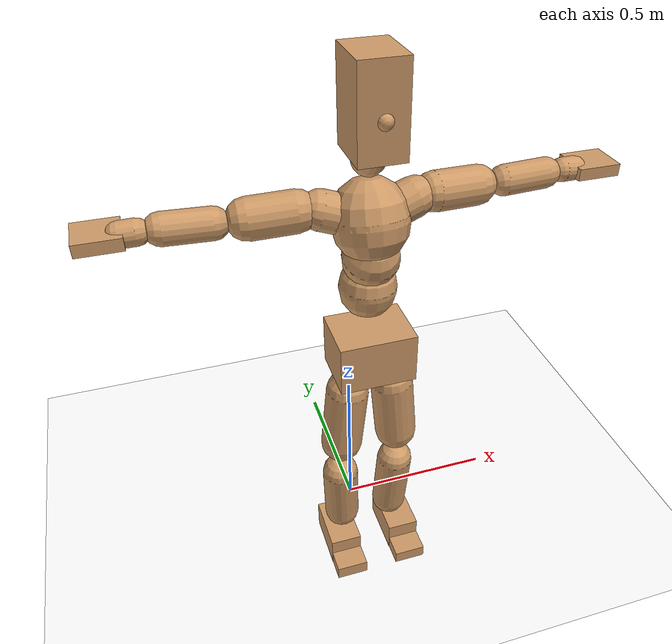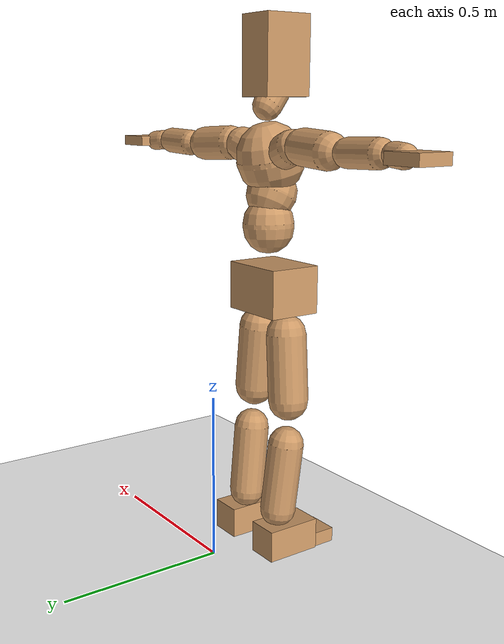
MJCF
<mujoco model="humanoid">
  <option integrator="implicitfast" />

  <visual>
    <global offwidth="1280" offheight="960" />
    <headlight active="1" ambient="0.34 0.34 0.34" diffuse="0.5 0.5 0.5" />
  </visual>

  <default>
    <joint damping="2" stiffness="2" armature="0.01" limited="true" solimplimit="0 .99 .01" />
    <geom condim="1" friction="0.7 0.005 0.0001" solimp=".99 .99 .003" solref="0.015 1" margin="0.001" rgba="0.8 0.6 .4 1" />
    <default class="smplcontact">
      <geom condim="3" friction="1. 0.005 0.0001" solref="0.015 1" solimp="0.98 0.98 0.001" priority="1" />
    </default>
    <default class="stiff_medium">
      <joint stiffness="10" />
    </default>
    <default class="stiff_medium_higher">
      <joint stiffness="50" />
    </default>
    <default class="stiff_high">
      <joint stiffness="100" />
    </default>
  </default>

  <asset>
    <texture type="skybox" builtin="gradient" rgb1="0.99 0.99 0.99" rgb2="0.608 0.828 0.892" width="100" />
    <texture builtin="flat" height="1278" mark="cross" markrgb="1 1 1" name="texgeom" random="0.01" rgb1="0.8 0.6 0.4" rgb2="0.8 0.6 0.4" type="cube" width="127" />
    <texture name="texplane" type="2d" builtin="checker" markrgb="1 1 1" rgb1="0.756 0.772 0.76" rgb2="0.6 0.6 0.6" width="100" height="100" />
    <material name="MatPlane" reflectance="0.5" texture="texplane" texrepeat="1 1" texuniform="true" />
    <material name="geom" texture="texgeom" texuniform="true" />
  </asset>

  <worldbody>
    <light name="tracking_light" pos="0 0 7" dir="0 0 -1" directional="true" cutoff="100" exponent="1" diffuse="1 1 1" specular="0.1 0.1 0.1" mode="trackcom" />
    <camera name="back" pos="0 3 2.4" xyaxes="-1 0 0 0 -1 2" mode="trackcom" />
    <camera name="side" pos="-3 0 2.4" xyaxes="0 -1 0 1 0 2" mode="trackcom" />
    <camera name="front_side" pos="-2.8 -2.8 0.8" xyaxes="0.5 -0.5 0 0.1 0.1 1" mode="trackcom" />
    <geom condim="3" name="floor" pos="0 0 0" rgba="1 1 1 1" size="100 100 .2" type="plane" material="MatPlane" />
    <body name="Pelvis" pos="-0.0018 -0.2233 0.825587" euler="90 0 0">
      <site name="Pelvis" size="0.01" />
      <freejoint name="Pelvis" />
      <geom type="box" pos="-0.0000 -0.0121 -0.0055" size="0.1069 0.0722 0.083" quat="1.0000 0.0000 0.0000 0.0000" density="3165.830099" name="Pelvis" />
      <body name="L_Hip" pos="0.0608125 -0.079975 -0.00595">
        <joint name="L_Hip_x" type="hinge" pos="0 0 0" axis="1 0 0" stiffness="8.018564387755102" range="-160.0 22.92" class="stiff_medium" damping="11.360360262787495" armature="0.007153277434128081"/>
        <joint name="L_Hip_y" type="hinge" pos="0 0 0" axis="0 1 0" stiffness="8.040343265306122" range="-70.0 70.0" class="stiff_medium" damping="8.207855033549663" armature="0.008378856726485993"/>
        <joint name="L_Hip_z" type="hinge" pos="0 0 0" axis="0 0 1" stiffness="8.038478673469386" range="-28.65 90.0" class="stiff_medium" damping="7.581991637464592" armature="0.007151427468522713"/>
        <geom type="capsule" density="2040.816327" fromto="0.0060375 -0.065625 -0.0007875 0.023975 -0.262675 -0.00315" size="0.0615" name="L_Hip" />
        <body name="L_Knee" pos="0.0300125 -0.3283 -0.0039375">
          <joint name="L_Knee_x" type="hinge" pos="0 0 0" axis="1 0 0" range="-5.16 171.89" damping="6.187481263356621" armature="0.007345812746914751" stiffness="1.6286882448979592"/>
          <joint name="L_Knee_y" type="hinge" pos="0 0 0" axis="0 1 0" range="-4.58 6.88" damping="6.664577128501179" armature="0.008600571968275746" stiffness="1.6138675306122447"/>
          <joint name="L_Knee_z" type="hinge" pos="0 0 0" axis="0 0 1" range="-6.88 4.58" damping="6.195974658750657" armature="0.007336542514311975" stiffness="1.635226244897959"/>
          <geom type="capsule" density="1234.567901" fromto="-0.0023625 -0.06965 -0.0076125 -0.0095375 -0.2786 -0.030625" size="0.0541" name="L_Knee" />
          <body name="L_Ankle" pos="-0.0119 -0.34825 -0.0382375">
            <joint name="L_Ankle_x" type="hinge" pos="0 0 0" axis="1 0 0" range="-45.84 45.84" class="stiff_medium" damping="5.16180813989307" armature="0.0084584782258343" stiffness="8.750018673469388"/>
            <joint name="L_Ankle_y" type="hinge" pos="0 0 0" axis="0 1 0" range="-74.48 22.92" class="stiff_medium" damping="2.5896377165389355" armature="0.008515827848834853" stiffness="8.750011836734695"/>
            <joint name="L_Ankle_z" type="hinge" pos="0 0 0" axis="0 0 1" range="-4.58 4.58" class="stiff_medium" damping="5.292201995620599" armature="0.008891238718238301" stiffness="8.75"/>
            <geom type="box" pos="0.0203875 -0.0209125 0.021175" size="0.0483 0.0464 0.085" quat="1.0000 0.0000 0.0000 0.0000" density="449.071558" name="L_Ankle" class="smplcontact" />
            <body name="L_Toe" pos="0.0231 -0.048825 0.104388">
              <joint name="L_Toe_x" type="hinge" pos="0 0 0" axis="1 0 0" range="-91.67 22.92" armature="0.009108934582590985" damping="1.7855327227208255" stiffness="1.75"/>
              <joint name="L_Toe_y" type="hinge" pos="0 0 0" axis="0 1 0" range="-4.58 4.58" armature="0.009372172477213336" damping="1.811148908020726" stiffness="1.75"/>
              <joint name="L_Toe_z" type="hinge" pos="0 0 0" axis="0 0 1" range="-4.58 4.58" armature="0.009904425331424308" damping="1.8618670376797877" stiffness="1.75"/>
              <geom type="box" pos="-0.002625 0.0048125 0.0217" size="0.0478 0.02 0.0496" quat="1.0000 0.0000 0.0000 0.0000" density="423.206892" name="L_Toe" class="smplcontact" />
            </body>
          </body>
        </body>
      </body>
      <body name="R_Hip" pos="-0.0592375 -0.0791875 -0.0037625">
        <joint name="R_Hip_x" type="hinge" pos="0 0 0" axis="1 0 0" stiffness="8.018564387755102" range="-160.0 22.92" class="stiff_medium" damping="11.360360262787495" armature="0.007153277434128081"/>
        <joint name="R_Hip_y" type="hinge" pos="0 0 0" axis="0 1 0" stiffness="8.040343265306122" range="-70.0 70.0" class="stiff_medium" damping="8.207855033549663" armature="0.008378856726485993"/>
        <joint name="R_Hip_z" type="hinge" pos="0 0 0" axis="0 0 1" stiffness="8.038478673469386" range="-90.0 28.65" class="stiff_medium" damping="7.581991637464592" armature="0.007151427468522713"/>
        <geom type="capsule" density="2040.816327" fromto="-0.0067375 -0.0669375 -0.001575 -0.026775 -0.267838 -0.0062125" size="0.0606" name="R_Hip" />
        <body name="R_Knee" pos="-0.0335125 -0.334775 -0.0077875">
          <joint name="R_Knee_x" type="hinge" pos="0 0 0" axis="1 0 0" range="-5.16 171.89" damping="6.187481263356621" armature="0.007345812746914751" stiffness="1.6286882448979592"/>
          <joint name="R_Knee_y" type="hinge" pos="0 0 0" axis="0 1 0" range="-6.88 4.58" damping="6.664577128501179" armature="0.008600571968275746" stiffness="1.6138675306122447"/>
          <joint name="R_Knee_z" type="hinge" pos="0 0 0" axis="0 0 1" range="-4.58 6.88" damping="6.195974658750657" armature="0.007336542514311975" stiffness="1.635226244897959"/>
          <geom type="capsule" density="1234.567901" fromto="0.0028 -0.0697375 -0.0074375 0.011025 -0.278863 -0.029575" size="0.0541" name="R_Knee" />
          <body name="R_Ankle" pos="0.013825 -0.3486 -0.0370125">
            <joint name="R_Ankle_x" type="hinge" pos="0 0 0" axis="1 0 0" range="-45.84 45.84" class="stiff_medium" damping="5.16180813989307" armature="0.0084584782258343" stiffness="8.750018673469388"/>
            <joint name="R_Ankle_y" type="hinge" pos="0 0 0" axis="0 1 0" range="-22.92 74.48" class="stiff_medium" damping="2.5896377165389355" armature="0.008515827848834853" stiffness="8.750011836734695"/>
            <joint name="R_Ankle_z" type="hinge" pos="0 0 0" axis="0 0 1" range="-4.58 4.58" class="stiff_medium" damping="5.292201995620599" armature="0.008891238718238301" stiffness="8.75"/>
            <geom type="box" pos="-0.01855 -0.015225 0.0224" size="0.0483 0.0478 0.0865" quat="1.0000 0.0000 0.0000 0.0000" density="434.700981" name="R_Ankle" class="smplcontact" />
            <body name="R_Toe" pos="-0.022225 -0.0420875 0.107888">
              <joint name="R_Toe_x" type="hinge" pos="0 0 0" axis="1 0 0" range="-91.67 22.92" armature="0.009108934582590985" damping="1.7855327227208255" stiffness="1.75"/>
              <joint name="R_Toe_y" type="hinge" pos="0 0 0" axis="0 1 0" range="-4.58 4.58" armature="0.009372172477213336" damping="1.811148908020726" stiffness="1.75"/>
              <joint name="R_Toe_z" type="hinge" pos="0 0 0" axis="0 0 1" range="-4.58 4.58" armature="0.009904425331424308" damping="1.8618670376797877" stiffness="1.75"/>
              <geom type="box" pos="0.003675 0.0039375 0.0198625" size="0.0479 0.0216 0.0493" quat="1.0000 0.0000 0.0000 0.0000" density="407.384095" name="R_Toe" class="smplcontact" />
            </body>
          </body>
        </body>
      </body>
      <body name="Torso" pos="-0.0025 0.109 -0.0267">
        <joint name="Torso_x" type="hinge" pos="0 0 0" axis="1 0 0" range="-25.78 57.3" class="stiff_medium" damping="13.810652204593467" armature="0.00909250101895922" stiffness="9.323146326530612"/>
        <joint name="Torso_y" type="hinge" pos="0 0 0" axis="0 1 0" range="-57.3 57.3" class="stiff_high" damping="14.331171543099826" armature="0.005453647751768046" stiffness="94.1491306122449"/>
        <joint name="Torso_z" type="hinge" pos="0 0 0" axis="0 0 1" range="-34.38 34.38" class="stiff_high" damping="17.298336416757877" armature="0.00784644435837221" stiffness="95.34014042553191"/>
        <geom type="capsule" density="2040.816327" fromto="0.0025 0.0608 0.0005 0.003 0.0743 0.0006" size="0.0769" name="Torso" />
        <body name="Spine" pos="0.0055 0.1352 0.0011">
          <joint name="Spine_x" type="hinge" pos="0 0 0" axis="1 0 0" stiffness="9.198122653061224" range="-25.78 57.3" class="stiff_medium" damping="13.62544793240939" armature="0.00897056634326775"/>
          <joint name="Spine_y" type="hinge" pos="0 0 0" axis="0 1 0" stiffness="9.181372040816328" range="-57.3 57.3" class="stiff_high" damping="5.644321396937274" armature="0.005421705337566874"/>
          <joint name="Spine_z" type="hinge" pos="0 0 0" axis="0 0 1" stiffness="18.1392375" range="-34.38 34.38" class="stiff_high" damping="9.55999432042161" armature="0.006997835754189828"/>
          <geom type="capsule" density="2040.816327" fromto="0.0007 0.0238 0.0114 0.0008 0.0291 0.014" size="0.0755" name="Spine" />
          <body name="Chest" pos="0.0015 0.0529 0.0254">
            <joint name="Chest_x" type="hinge" pos="0 0 0" axis="1 0 0" stiffness="8.90027425531915" range="-25.78 57.3" class="stiff_medium" damping="13.356132991200658" armature="0.008907904701027888"/>
            <joint name="Chest_y" type="hinge" pos="0 0 0" axis="0 1 0" stiffness="8.011889047619047" range="-57.3 57.3" class="stiff_high" damping="5.2662250647625015" armature="0.005408588385784326"/>
            <joint name="Chest_z" type="hinge" pos="0 0 0" axis="0 0 1" stiffness="18.1318547826087" range="-34.38 34.38" class="stiff_high" damping="9.30245805793391" armature="0.0066285832124010555"/>
            <geom type="capsule" density="2040.816327" fromto="-0.0009 0.0682 -0.0173 -0.001 0.0833 -0.0212" size="0.1002" name="Chest" />
            <body name="Neck" pos="-0.0028 0.2139 -0.0429">
              <joint name="Neck_x" type="hinge" pos="0 0 0" axis="1 0 0" range="-28.65 57.3" class="stiff_medium_higher" damping="9.999999999999993" armature="0.009999999999999988" stiffness="50.0"/>
              <joint name="Neck_y" type="hinge" pos="0 0 0" axis="0 1 0" range="-40.11 40.11" class="stiff_medium_higher" damping="10.0" armature="0.01" stiffness="50.0"/>
              <joint name="Neck_z" type="hinge" pos="0 0 0" axis="0 0 1" range="-40.11 40.11" class="stiff_medium_higher" damping="9.999999999999998" armature="0.009999999999999995" stiffness="50.0"/>
              <geom type="capsule" density="1000" fromto="0.001 0.013 0.0103 0.0041 0.052 0.0411" size="0.0436" name="Neck" />
              <body name="Head" pos="0.0052 0.065 0.0513">
                <joint name="Head_x" type="hinge" pos="0 0 0" axis="1 0 0" range="-28.65 57.3" class="stiff_medium_higher" damping="1.9999999999999967" armature="0.009999999999999967" stiffness="50.0"/>
                <joint name="Head_y" type="hinge" pos="0 0 0" axis="0 1 0" range="-40.11 40.11" class="stiff_medium_higher" damping="2.0" armature="0.010000000000000002" stiffness="50.0"/>
                <joint name="Head_z" type="hinge" pos="0 0 0" axis="0 0 1" range="-40.11 40.11" class="stiff_medium_higher" damping="1.9999999999999982" armature="0.009999999999999983" stiffness="50.0"/>
                <geom type="box" pos="-0.0042 0.0876 -0.0116" size="0.0606 0.1154 0.076" quat="1.0000 0.0000 0.0000 0.0000" density="1018.069894" name="Head" />
                <geom type="capsule" name="nose" size="0.02 0.01" pos="0 0.07 0.05" quat="1 0 0 0" mass="0" contype="0" conaffinity="0" />
              </body>
            </body>
            <body name="L_Thorax" pos="0.06107 0.0943175 -0.0264275">
              <joint name="L_Thorax_x" type="hinge" pos="0 0 0" axis="1 0 0" range="-10.89 4.58" class="stiff_medium_higher" damping="13.430877912506707" armature="0.006743873105350367" stiffness="33.43562346938776"/>
              <joint name="L_Thorax_y" type="hinge" pos="0 0 0" axis="0 1 0" range="-28.65 17.19" class="stiff_medium_higher" damping="11.84395870975866" armature="0.0052794554835980945" stiffness="33.21350051020408"/>
              <joint name="L_Thorax_z" type="hinge" pos="0 0 0" axis="0 0 1" range="-31.51 40.11" class="stiff_medium_higher" damping="11.842904847336026" armature="0.005278125365950999" stiffness="33.215958673469395"/>
              <geom type="capsule" density="1000" fromto="0.014105 0.0047275 -0.001395 0.05642 0.01891 -0.0055025" size="0.0521" name="L_Thorax" />
              <body name="L_Shoulder" pos="0.070525 0.0236375 -0.0068975">
                <joint name="L_Shoulder_x" type="hinge" pos="0 0 0" axis="1 0 0" range="-97.4 97.4" class="stiff_medium" damping="4.200573869623509" armature="0.007293874713182494" stiffness="6.719801632653062"/>
                <joint name="L_Shoulder_y" type="hinge" pos="0 0 0" axis="0 1 0" range="-108.86 80.21" class="stiff_medium" damping="3.571992469559294" armature="0.0053222464306009526" stiffness="6.659223469387755"/>
                <joint name="L_Shoulder_z" type="hinge" pos="0 0 0" axis="0 0 1" range="-97.4 85.94" class="stiff_medium" damping="3.572341469527375" armature="0.005320431449506391" stiffness="6.662796938775511"/>
                <geom type="capsule" density="1000" fromto="0.0402225 -0.002015 -0.0042625 0.160968 -0.007905 -0.01705" size="0.0517" name="L_Shoulder" />
                <body name="L_Elbow" pos="0.20119 -0.00992 -0.0213125">
                  <joint name="L_Elbow_x" type="hinge" pos="0 0 0" axis="1 0 0" range="-17.19 4.58" damping="3.751209439001524" armature="0.008221713445805232" stiffness="1.3692106734693876"/>
                  <joint name="L_Elbow_y" type="hinge" pos="0 0 0" axis="0 1 0" range="-180.0 17.19" damping="3.0766314110203528" armature="0.005532912421377135" stiffness="1.368633387755102"/>
                  <joint name="L_Elbow_z" type="hinge" pos="0 0 0" axis="0 0 1" range="-100.84 4.58" damping="3.0750834512185703" armature="0.005523383254833452" stiffness="1.3696153673469391"/>
                  <geom type="capsule" density="1000" fromto="0.038595 0.001395 -0.000155 0.154535 0.00558 -0.0006975" size="0.0405" name="L_Elbow" />
                  <body name="L_Wrist" pos="0.19313 0.006975 -0.00093">
                    <joint name="L_Wrist_x" type="hinge" pos="0 0 0" axis="1 0 0" range="-180.0 22.92" armature="0.008602907880090728" damping="1.5994571311849581" stiffness="1.486859530612245"/>
                    <joint name="L_Wrist_y" type="hinge" pos="0 0 0" axis="0 1 0" range="-17.19 17.19" armature="0.00633543766201438" damping="1.3682982903238887" stiffness="1.4775934285714285"/>
                    <joint name="L_Wrist_z" type="hinge" pos="0 0 0" axis="0 0 1" range="-22.92 22.92" armature="0.0062061994301847246" damping="1.3559819581986114" stiffness="1.4813309591836734"/>
                    <geom type="capsule" density="1000" fromto="0.01302 -0.00124 -0.002325 0.05208 -0.0050375 -0.0093" size="0.0318" name="L_Wrist" class="smplcontact" />
                    <body name="L_Hand" pos="0.0651 -0.006355 -0.0115475">
                      <joint name="L_Hand_x" type="hinge" pos="0 0 0" axis="1 0 0" range="-17.19 17.19" armature="0.009826007646420857" damping="1.745297215488086" stiffness="1.55"/>
                      <joint name="L_Hand_y" type="hinge" pos="0 0 0" axis="0 1 0" range="-51.57 51.57" armature="0.007895802531703657" damping="1.5645123153328433" stiffness="1.55"/>
                      <joint name="L_Hand_z" type="hinge" pos="0 0 0" axis="0 0 1" range="-91.67 91.67" armature="0.00738127998582647" damping="1.5126786822078924" stiffness="1.55"/>
                      <geom type="box" pos="0.0382075 0.000775 -0.004495" size="0.0585 0.0158 0.0538" quat="1.0000 0.0000 0.0000 0.0000" density="400.552564" name="L_Hand" class="smplcontact" />
                    </body>
                  </body>
                </body>
              </body>
            </body>
            <body name="R_Thorax" pos="-0.063395 0.09207 -0.029915">
              <joint name="R_Thorax_x" type="hinge" pos="0 0 0" axis="1 0 0" range="-10.89 4.58" class="stiff_medium_higher" damping="13.430877912506707" armature="0.006743873105350367" stiffness="33.43562346938776"/>
              <joint name="R_Thorax_y" type="hinge" pos="0 0 0" axis="0 1 0" range="-17.19 28.65" class="stiff_medium_higher" damping="11.84395870975866" armature="0.0052794554835980945" stiffness="33.21350051020408"/>
              <joint name="R_Thorax_z" type="hinge" pos="0 0 0" axis="0 0 1" range="-40.11 31.51" class="stiff_medium_higher" damping="11.842904847336026" armature="0.005278125365950999" stiffness="33.215958673469395"/>
              <geom type="capsule" density="1000" fromto="-0.01488 0.0050375 -0.001395 -0.05952 0.02015 -0.0056575" size="0.0511" name="R_Thorax" />
              <body name="R_Shoulder" pos="-0.0744 0.025265 -0.0070525">
                <joint name="R_Shoulder_x" type="hinge" pos="0 0 0" axis="1 0 0" range="-97.4 97.4" class="stiff_medium" damping="4.200573869623509" armature="0.007293874713182494" stiffness="6.719801632653062"/>
                <joint name="R_Shoulder_y" type="hinge" pos="0 0 0" axis="0 1 0" range="-80.21 108.86" class="stiff_medium" damping="3.571992469559294" armature="0.0053222464306009526" stiffness="6.659223469387755"/>
                <joint name="R_Shoulder_z" type="hinge" pos="0 0 0" axis="0 0 1" range="-85.94 97.4" class="stiff_medium" damping="3.572341469527375" armature="0.005320431449506391" stiffness="6.662796938775511"/>
                <geom type="capsule" density="1000" fromto="-0.0392925 -0.0020925 -0.0033325 -0.157325 -0.0082925 -0.0132525" size="0.0531" name="R_Shoulder" />
                <body name="R_Elbow" pos="-0.196618 -0.0103075 -0.016585">
                  <joint name="R_Elbow_x" type="hinge" pos="0 0 0" axis="1 0 0" range="-17.19 4.58" damping="3.751209439001524" armature="0.008221713445805232" stiffness="1.3692106734693876"/>
                  <joint name="R_Elbow_y" type="hinge" pos="0 0 0" axis="0 1 0" range="-17.19 180.0" damping="3.0766314110203528" armature="0.005532912421377135" stiffness="1.368633387755102"/>
                  <joint name="R_Elbow_z" type="hinge" pos="0 0 0" axis="0 0 1" range="-4.58 100.84" damping="3.0750834512185703" armature="0.005523383254833452" stiffness="1.3696153673469391"/>
                  <geom type="capsule" density="1000" fromto="-0.0396025 0.00124 -0.0008525 -0.158255 0.004805 -0.00341" size="0.0408" name="R_Elbow" />
                  <body name="R_Wrist" pos="-0.197858 0.006045 -0.00434">
                    <joint name="R_Wrist_x" type="hinge" pos="0 0 0" axis="1 0 0" range="-180.0 22.92" armature="0.008602907880090728" damping="1.5994571311849581" stiffness="1.486859530612245"/>
                    <joint name="R_Wrist_y" type="hinge" pos="0 0 0" axis="0 1 0" range="-17.19 17.19" armature="0.00633543766201438" damping="1.3682982903238887" stiffness="1.4775934285714285"/>
                    <joint name="R_Wrist_z" type="hinge" pos="0 0 0" axis="0 0 1" range="-22.92 22.92" armature="0.0062061994301847246" damping="1.3559819581986114" stiffness="1.4813309591836734"/>
                    <geom type="capsule" density="1000" fromto="-0.0130975 -0.00093 -0.0016275 -0.0524675 -0.0037975 -0.0064325" size="0.0326" name="R_Wrist" class="smplcontact" />
                    <body name="R_Hand" pos="-0.065565 -0.0047275 -0.0079825">
                      <joint name="R_Hand_x" type="hinge" pos="0 0 0" axis="1 0 0" range="-17.19 17.19" armature="0.009826007646420857" damping="1.745297215488086" stiffness="1.55"/>
                      <joint name="R_Hand_y" type="hinge" pos="0 0 0" axis="0 1 0" range="-51.57 51.57" armature="0.007895802531703657" damping="1.5645123153328433" stiffness="1.55"/>
                      <joint name="R_Hand_z" type="hinge" pos="0 0 0" axis="0 0 1" range="-91.67 91.67" armature="0.00738127998582647" damping="1.5126786822078924" stiffness="1.55"/>
                      <geom type="box" pos="-0.035805 -0.0006975 -0.0061225" size="0.0569 0.0164 0.0546" quat="1.0000 0.0000 0.0000 0.0000" density="403.679611" name="R_Hand" class="smplcontact" />
                    </body>
                  </body>
                </body>
              </body>
            </body>
          </body>
        </body>
      </body>
    </body>
  </worldbody>
  <actuator>
    <general name="L_Hip_x" joint="L_Hip_x" biastype="affine" gainprm="230.3974619502181" biasprm="-172.65954561631258 -144.33415897959185 -1.5147147017049993" ctrllimited="true" ctrlrange="-1 1" forcerange="-288.6683179591837 288.6683179591837" />
    <general name="L_Hip_y" joint="L_Hip_y" biastype="affine" gainprm="176.8163833423812" biasprm="0.0 -144.7261787755102 -1.6415710067099327" ctrllimited="true" ctrlrange="-1 1" forcerange="-289.4523575510204 289.4523575510204" />
    <general name="L_Hip_z" joint="L_Hip_z" biastype="affine" gainprm="149.81713355526176" biasprm="77.4654963642251 -144.69261612244895 -1.5163983274929183" ctrllimited="true" ctrlrange="-1 1" forcerange="-289.3852322448979 289.3852322448979" />
    <general name="L_Knee_x" joint="L_Knee_x" biastype="affine" gainprm="226.4768283011216" biasprm="213.27580673621011 -146.58194204081633 -1.5468703158391552" ctrllimited="true" ctrlrange="-1 1" forcerange="-293.16388408163266 293.16388408163266" />
    <general name="L_Knee_y" joint="L_Knee_y" biastype="affine" gainprm="14.525877693080384" biasprm="2.915315767372154 -145.24807775510203 -1.6661442821252948" ctrllimited="true" ctrlrange="-1 1" forcerange="-290.49615551020406 290.49615551020406" />
    <general name="L_Knee_z" joint="L_Knee_z" biastype="affine" gainprm="14.718120281465588" biasprm="-2.953898485808975 -147.17036204081631 -1.5489936646876643" ctrllimited="true" ctrlrange="-1 1" forcerange="-294.34072408163263 294.34072408163263" />
    <general name="L_Ankle_x" joint="L_Ankle_x" biastype="affine" gainprm="63.0047751266266" biasprm="0.0 -78.75016806122449 -1.7206027132976902" ctrllimited="true" ctrlrange="-1 1" forcerange="-157.50033612244897 157.50033612244897" />
    <general name="L_Ankle_y" joint="L_Ankle_y" biastype="affine" gainprm="66.93564902394152" biasprm="-35.43328607468609 -78.75010653061226 -1.7264251443592904" ctrllimited="true" ctrlrange="-1 1" forcerange="-157.5002130612245 157.5002130612245" />
    <general name="L_Ankle_z" joint="L_Ankle_z" biastype="affine" gainprm="6.294966279630548" biasprm="0.0 -78.75 -1.764067331873533" ctrllimited="true" ctrlrange="-1 1" forcerange="-157.5 157.5" />
    <general name="L_Toe_x" joint="L_Toe_x" biastype="affine" gainprm="62.999142880599514" biasprm="-37.797286613502195 -63.0 -0.7142130890883303" ctrllimited="true" ctrlrange="-1 1" forcerange="-126.0 126.0" />
    <general name="L_Toe_y" joint="L_Toe_y" biastype="affine" gainprm="5.035973023704439" biasprm="0.0 -63.0 -0.7244595632082904" ctrllimited="true" ctrlrange="-1 1" forcerange="-126.0 126.0" />
    <general name="L_Toe_z" joint="L_Toe_z" biastype="affine" gainprm="5.035973023704439" biasprm="0.0 -63.0 -0.7447468150719151" ctrllimited="true" ctrlrange="-1 1" forcerange="-126.0 126.0" />
    <general name="R_Hip_x" joint="R_Hip_x" biastype="affine" gainprm="230.3974619502181" biasprm="-172.65954561631258 -144.33415897959185 -1.5147147017049993" ctrllimited="true" ctrlrange="-1 1" forcerange="-288.6683179591837 288.6683179591837" />
    <general name="R_Hip_y" joint="R_Hip_y" biastype="affine" gainprm="176.8163833423812" biasprm="0.0 -144.7261787755102 -1.6415710067099327" ctrllimited="true" ctrlrange="-1 1" forcerange="-289.4523575510204 289.4523575510204" />
    <general name="R_Hip_z" joint="R_Hip_z" biastype="affine" gainprm="149.81713355526176" biasprm="-77.4654963642251 -144.69261612244895 -1.5163983274929183" ctrllimited="true" ctrlrange="-1 1" forcerange="-289.3852322448979 289.3852322448979" />
    <general name="R_Knee_x" joint="R_Knee_x" biastype="affine" gainprm="226.4768283011216" biasprm="213.27580673621011 -146.58194204081633 -1.5468703158391552" ctrllimited="true" ctrlrange="-1 1" forcerange="-293.16388408163266 293.16388408163266" />
    <general name="R_Knee_y" joint="R_Knee_y" biastype="affine" gainprm="14.525877693080384" biasprm="-2.915315767372154 -145.24807775510203 -1.6661442821252948" ctrllimited="true" ctrlrange="-1 1" forcerange="-290.49615551020406 290.49615551020406" />
    <general name="R_Knee_z" joint="R_Knee_z" biastype="affine" gainprm="14.718120281465588" biasprm="2.953898485808975 -147.17036204081631 -1.5489936646876643" ctrllimited="true" ctrlrange="-1 1" forcerange="-294.34072408163263 294.34072408163263" />
    <general name="R_Ankle_x" joint="R_Ankle_x" biastype="affine" gainprm="63.0047751266266" biasprm="0.0 -78.75016806122449 -1.7206027132976902" ctrllimited="true" ctrlrange="-1 1" forcerange="-157.50033612244897 157.50033612244897" />
    <general name="R_Ankle_y" joint="R_Ankle_y" biastype="affine" gainprm="66.93564902394152" biasprm="35.43328607468609 -78.75010653061226 -1.7264251443592904" ctrllimited="true" ctrlrange="-1 1" forcerange="-157.5002130612245 157.5002130612245" />
    <general name="R_Ankle_z" joint="R_Ankle_z" biastype="affine" gainprm="6.294966279630548" biasprm="0.0 -78.75 -1.764067331873533" ctrllimited="true" ctrlrange="-1 1" forcerange="-157.5 157.5" />
    <general name="R_Toe_x" joint="R_Toe_x" biastype="affine" gainprm="62.999142880599514" biasprm="-37.797286613502195 -63.0 -0.7142130890883303" ctrllimited="true" ctrlrange="-1 1" forcerange="-126.0 126.0" />
    <general name="R_Toe_y" joint="R_Toe_y" biastype="affine" gainprm="5.035973023704439" biasprm="0.0 -63.0 -0.7244595632082904" ctrllimited="true" ctrlrange="-1 1" forcerange="-126.0 126.0" />
    <general name="R_Toe_z" joint="R_Toe_z" biastype="affine" gainprm="5.035973023704439" biasprm="0.0 -63.0 -0.7447468150719151" ctrllimited="true" ctrlrange="-1 1" forcerange="-126.0 126.0" />
    <general name="Torso_x" joint="Torso_x" biastype="affine" gainprm="162.2249324590423" biasprm="61.54706152032995 -223.7555118367347 -3.682840587891591" ctrllimited="true" ctrlrange="-1 1" forcerange="-335.63326775510205 335.63326775510205" />
    <general name="Torso_y" joint="Torso_y" biastype="affine" gainprm="225.974557843997" biasprm="0.0 -225.95791346938776 -2.866234308619965" ctrllimited="true" ctrlrange="-1 1" forcerange="-338.93687020408163 338.93687020408163" />
    <general name="Torso_z" joint="Torso_z" biastype="affine" gainprm="137.29991517080745" biasprm="0.0 -228.8163370212766 -3.459667283351575" ctrllimited="true" ctrlrange="-1 1" forcerange="-343.2245055319149 343.2245055319149" />
    <general name="Spine_x" joint="Spine_x" biastype="affine" gainprm="160.04949122128795" biasprm="60.721713568789056 -220.7549436734694 -3.633452781975837" ctrllimited="true" ctrlrange="-1 1" forcerange="-331.1324155102041 331.1324155102041" />
    <general name="Spine_y" joint="Spine_y" biastype="affine" gainprm="220.36916048323718" biasprm="0.0 -220.35292897959184 -2.822160698468637" ctrllimited="true" ctrlrange="-1 1" forcerange="-330.52939346938774 330.52939346938774" />
    <general name="Spine_z" joint="Spine_z" biastype="affine" gainprm="130.61213036278338" biasprm="0.0 -217.67085 -3.1866647734738702" ctrllimited="true" ctrlrange="-1 1" forcerange="-326.506275 326.506275" />
    <general name="Chest_x" joint="Chest_x" biastype="affine" gainprm="154.86685925194476" biasprm="58.7554574340551 -213.6065821276596 -3.5616354643201755" ctrllimited="true" ctrlrange="-1 1" forcerange="-320.4098731914894 320.4098731914894" />
    <general name="Chest_y" joint="Chest_y" biastype="affine" gainprm="192.29950114859662" biasprm="0.0 -192.28533714285712 -2.6331125323812508" ctrllimited="true" ctrlrange="-1 1" forcerange="-288.4280057142857 288.4280057142857" />
    <general name="Chest_z" joint="Chest_z" biastype="affine" gainprm="130.55897088205305" biasprm="0.0 -217.58225739130438 -3.1008193526446366" ctrllimited="true" ctrlrange="-1 1" forcerange="-326.37338608695654 326.37338608695654" />
    <general name="Neck_x" joint="Neck_x" biastype="affine" gainprm="27.00198885760427" biasprm="9.000662952534757 -36.0 -0.7999999999999995" ctrllimited="true" ctrlrange="-1 1" forcerange="-72.0 72.0" />
    <general name="Neck_y" joint="Neck_y" biastype="affine" gainprm="25.20185626709732" biasprm="0.0 -36.0 -0.8" ctrllimited="true" ctrlrange="-1 1" forcerange="-72.0 72.0" />
    <general name="Neck_z" joint="Neck_z" biastype="affine" gainprm="25.20185626709732" biasprm="0.0 -36.0 -0.7999999999999998" ctrllimited="true" ctrlrange="-1 1" forcerange="-72.0 72.0" />
    <general name="Head_x" joint="Head_x" biastype="affine" gainprm="18.001325905069514" biasprm="6.000441968356505 -24.0 -0.7999999999999987" ctrllimited="true" ctrlrange="-1 1" forcerange="-48.0 48.0" />
    <general name="Head_y" joint="Head_y" biastype="affine" gainprm="16.801237511398213" biasprm="0.0 -24.0 -0.8" ctrllimited="true" ctrlrange="-1 1" forcerange="-48.0 48.0" />
    <general name="Head_z" joint="Head_z" biastype="affine" gainprm="16.801237511398213" biasprm="0.0 -24.0 -0.7999999999999994" ctrllimited="true" ctrlrange="-1 1" forcerange="-48.0 48.0" />
    <general name="L_Thorax_x" joint="L_Thorax_x" biastype="affine" gainprm="10.833239714349121" biasprm="-4.4187293211081435 -80.24549632653061 -1.0744702330005367" ctrllimited="true" ctrlrange="-1 1" forcerange="-160.49099265306123 160.49099265306123" />
    <general name="L_Thorax_y" joint="L_Thorax_y" biastype="affine" gainprm="31.887309180393395" biasprm="-7.971827295098349 -79.71240122448978 -0.9475166967806928" ctrllimited="true" ctrlrange="-1 1" forcerange="-159.42480244897956 159.42480244897956" />
    <general name="L_Thorax_z" joint="L_Thorax_z" biastype="affine" gainprm="49.8241297438119" biasprm="5.98279134036278 -79.71830081632655 -0.9474323877868822" ctrllimited="true" ctrlrange="-1 1" forcerange="-159.4366016326531 159.4366016326531" />
    <general name="L_Shoulder_x" joint="L_Shoulder_x" biastype="affine" gainprm="54.831990872567324" biasprm="0.0 -32.2550478367347 -1.1201530318996022" ctrllimited="true" ctrlrange="-1 1" forcerange="-64.5100956734694 64.5100956734694" />
    <general name="L_Shoulder_y" joint="L_Shoulder_y" biastype="affine" gainprm="52.739356038732126" biasprm="-7.9916567964757785 -31.964272653061222 -0.9525313252158117" ctrllimited="true" ctrlrange="-1 1" forcerange="-63.928545306122444 63.928545306122444" />
    <general name="L_Shoulder_z" joint="L_Shoulder_z" biastype="affine" gainprm="51.16846795221352" biasprm="-3.1983781102452724 -31.98142530612245 -0.9526243918739667" ctrllimited="true" ctrlrange="-1 1" forcerange="-63.9628506122449 63.9628506122449" />
    <general name="L_Elbow_x" joint="L_Elbow_x" biastype="affine" gainprm="9.364370274135227" biasprm="-5.424194265358073 -49.291584244897955 -0.6001935102402438" ctrllimited="true" ctrlrange="-1 1" forcerange="-98.58316848979591 98.58316848979591" />
    <general name="L_Elbow_y" joint="L_Elbow_y" biastype="affine" gainprm="84.78555943298619" biasprm="-70.00323003846282 -49.27080195918367 -0.4922610257632565" ctrllimited="true" ctrlrange="-1 1" forcerange="-98.54160391836734 98.54160391836734" />
    <general name="L_Elbow_z" joint="L_Elbow_z" biastype="affine" gainprm="45.359839041363344" biasprm="-41.41849844547179 -49.306153224489805 -0.4920133521949713" ctrllimited="true" ctrlrange="-1 1" forcerange="-98.61230644897961 98.61230644897961" />
    <general name="L_Wrist_x" joint="L_Wrist_x" biastype="affine" gainprm="15.797683800581504" biasprm="-12.228958069166877 -8.92115718367347 -0.6397828524739833" ctrllimited="true" ctrlrange="-1 1" forcerange="-17.84231436734694 17.84231436734694" />
    <general name="L_Wrist_y" joint="L_Wrist_y" biastype="affine" gainprm="2.659864086290334" biasprm="0.0 -8.86556057142857 -0.5473193161295555" ctrllimited="true" ctrlrange="-1 1" forcerange="-17.73112114285714 17.73112114285714" />
    <general name="L_Wrist_z" joint="L_Wrist_z" biastype="affine" gainprm="3.5554561826046047" biasprm="0.0 -8.88798575510204 -0.5423927832794446" ctrllimited="true" ctrlrange="-1 1" forcerange="-17.77597151020408 17.77597151020408" />
    <general name="L_Hand_x" joint="L_Hand_x" biastype="affine" gainprm="2.7902055152857757" biasprm="0.0 -9.3 -0.6981188861952344" ctrllimited="true" ctrlrange="-1 1" forcerange="-18.6 18.6" />
    <general name="L_Hand_y" joint="L_Hand_y" biastype="affine" gainprm="8.370616545857324" biasprm="0.0 -9.3 -0.6258049261331373" ctrllimited="true" ctrlrange="-1 1" forcerange="-18.6 18.6" />
    <general name="L_Hand_z" joint="L_Hand_z" biastype="affine" gainprm="14.879472925319778" biasprm="0.0 -9.3 -0.605071472883157" ctrllimited="true" ctrlrange="-1 1" forcerange="-18.6 18.6" />
    <general name="R_Thorax_x" joint="R_Thorax_x" biastype="affine" gainprm="10.833239714349121" biasprm="-4.4187293211081435 -80.24549632653061 -1.0744702330005367" ctrllimited="true" ctrlrange="-1 1" forcerange="-160.49099265306123 160.49099265306123" />
    <general name="R_Thorax_y" joint="R_Thorax_y" biastype="affine" gainprm="31.887309180393395" biasprm="7.971827295098343 -79.71240122448978 -0.9475166967806928" ctrllimited="true" ctrlrange="-1 1" forcerange="-159.42480244897956 159.42480244897956" />
    <general name="R_Thorax_z" joint="R_Thorax_z" biastype="affine" gainprm="49.8241297438119" biasprm="-5.98279134036278 -79.71830081632655 -0.9474323877868822" ctrllimited="true" ctrlrange="-1 1" forcerange="-159.4366016326531 159.4366016326531" />
    <general name="R_Shoulder_x" joint="R_Shoulder_x" biastype="affine" gainprm="54.831990872567324" biasprm="0.0 -32.2550478367347 -1.1201530318996022" ctrllimited="true" ctrlrange="-1 1" forcerange="-64.5100956734694 64.5100956734694" />
    <general name="R_Shoulder_y" joint="R_Shoulder_y" biastype="affine" gainprm="52.739356038732126" biasprm="7.9916567964757785 -31.964272653061222 -0.9525313252158117" ctrllimited="true" ctrlrange="-1 1" forcerange="-63.928545306122444 63.928545306122444" />
    <general name="R_Shoulder_z" joint="R_Shoulder_z" biastype="affine" gainprm="51.16846795221352" biasprm="3.1983781102452653 -31.98142530612245 -0.9526243918739667" ctrllimited="true" ctrlrange="-1 1" forcerange="-63.9628506122449 63.9628506122449" />
    <general name="R_Elbow_x" joint="R_Elbow_x" biastype="affine" gainprm="9.364370274135227" biasprm="-5.424194265358073 -49.291584244897955 -0.6001935102402438" ctrllimited="true" ctrlrange="-1 1" forcerange="-98.58316848979591 98.58316848979591" />
    <general name="R_Elbow_y" joint="R_Elbow_y" biastype="affine" gainprm="84.78555943298619" biasprm="70.00323003846282 -49.27080195918367 -0.4922610257632565" ctrllimited="true" ctrlrange="-1 1" forcerange="-98.54160391836734 98.54160391836734" />
    <general name="R_Elbow_z" joint="R_Elbow_z" biastype="affine" gainprm="45.359839041363344" biasprm="41.41849844547178 -49.306153224489805 -0.4920133521949713" ctrllimited="true" ctrlrange="-1 1" forcerange="-98.61230644897961 98.61230644897961" />
    <general name="R_Wrist_x" joint="R_Wrist_x" biastype="affine" gainprm="15.797683800581504" biasprm="-12.228958069166877 -8.92115718367347 -0.6397828524739833" ctrllimited="true" ctrlrange="-1 1" forcerange="-17.84231436734694 17.84231436734694" />
    <general name="R_Wrist_y" joint="R_Wrist_y" biastype="affine" gainprm="2.659864086290334" biasprm="0.0 -8.86556057142857 -0.5473193161295555" ctrllimited="true" ctrlrange="-1 1" forcerange="-17.73112114285714 17.73112114285714" />
    <general name="R_Wrist_z" joint="R_Wrist_z" biastype="affine" gainprm="3.5554561826046047" biasprm="0.0 -8.88798575510204 -0.5423927832794446" ctrllimited="true" ctrlrange="-1 1" forcerange="-17.77597151020408 17.77597151020408" />
    <general name="R_Hand_x" joint="R_Hand_x" biastype="affine" gainprm="2.7902055152857757" biasprm="0.0 -9.3 -0.6981188861952344" ctrllimited="true" ctrlrange="-1 1" forcerange="-18.6 18.6" />
    <general name="R_Hand_y" joint="R_Hand_y" biastype="affine" gainprm="8.370616545857324" biasprm="0.0 -9.3 -0.6258049261331373" ctrllimited="true" ctrlrange="-1 1" forcerange="-18.6 18.6" />
    <general name="R_Hand_z" joint="R_Hand_z" biastype="affine" gainprm="14.879472925319778" biasprm="0.0 -9.3 -0.605071472883157" ctrllimited="true" ctrlrange="-1 1" forcerange="-18.6 18.6" />
  </actuator>
  <contact>
    <exclude body1="Torso" body2="Chest" />
    <exclude body1="Head" body2="Chest" />
    <exclude body1="R_Knee" body2="R_Toe" />
    <exclude body1="R_Knee" body2="L_Ankle" />
    <exclude body1="R_Knee" body2="L_Toe" />
    <exclude body1="L_Knee" body2="L_Toe" />
    <exclude body1="L_Knee" body2="R_Ankle" />
    <exclude body1="L_Knee" body2="R_Toe" />
    <exclude body1="L_Shoulder" body2="Chest" />
    <exclude body1="R_Shoulder" body2="Chest" />
  </contact>
  <sensor>
    <framelinvel name="sensor_Pelvis_framelinvel" objtype="xbody" objname="Pelvis" />
    <framelinvel name="sensor_L_Hip_framelinvel" objtype="xbody" objname="L_Hip" />
    <framelinvel name="sensor_L_Knee_framelinvel" objtype="xbody" objname="L_Knee" />
    <framelinvel name="sensor_L_Ankle_framelinvel" objtype="xbody" objname="L_Ankle" />
    <framelinvel name="sensor_L_Toe_framelinvel" objtype="xbody" objname="L_Toe" />
    <framelinvel name="sensor_R_Hip_framelinvel" objtype="xbody" objname="R_Hip" />
    <framelinvel name="sensor_R_Knee_framelinvel" objtype="xbody" objname="R_Knee" />
    <framelinvel name="sensor_R_Ankle_framelinvel" objtype="xbody" objname="R_Ankle" />
    <framelinvel name="sensor_R_Toe_framelinvel" objtype="xbody" objname="R_Toe" />
    <framelinvel name="sensor_Torso_framelinvel" objtype="xbody" objname="Torso" />
    <framelinvel name="sensor_Spine_framelinvel" objtype="xbody" objname="Spine" />
    <framelinvel name="sensor_Chest_framelinvel" objtype="xbody" objname="Chest" />
    <framelinvel name="sensor_Neck_framelinvel" objtype="xbody" objname="Neck" />
    <framelinvel name="sensor_Head_framelinvel" objtype="xbody" objname="Head" />
    <framelinvel name="sensor_L_Thorax_framelinvel" objtype="xbody" objname="L_Thorax" />
    <framelinvel name="sensor_L_Shoulder_framelinvel" objtype="xbody" objname="L_Shoulder" />
    <framelinvel name="sensor_L_Elbow_framelinvel" objtype="xbody" objname="L_Elbow" />
    <framelinvel name="sensor_L_Wrist_framelinvel" objtype="xbody" objname="L_Wrist" />
    <framelinvel name="sensor_L_Hand_framelinvel" objtype="xbody" objname="L_Hand" />
    <framelinvel name="sensor_R_Thorax_framelinvel" objtype="xbody" objname="R_Thorax" />
    <framelinvel name="sensor_R_Shoulder_framelinvel" objtype="xbody" objname="R_Shoulder" />
    <framelinvel name="sensor_R_Elbow_framelinvel" objtype="xbody" objname="R_Elbow" />
    <framelinvel name="sensor_R_Wrist_framelinvel" objtype="xbody" objname="R_Wrist" />
    <framelinvel name="sensor_R_Hand_framelinvel" objtype="xbody" objname="R_Hand" />
    <frameangvel name="sensor_Pelvis_frameangvel" objtype="xbody" objname="Pelvis" />
    <frameangvel name="sensor_L_Hip_frameangvel" objtype="xbody" objname="L_Hip" />
    <frameangvel name="sensor_L_Knee_frameangvel" objtype="xbody" objname="L_Knee" />
    <frameangvel name="sensor_L_Ankle_frameangvel" objtype="xbody" objname="L_Ankle" />
    <frameangvel name="sensor_L_Toe_frameangvel" objtype="xbody" objname="L_Toe" />
    <frameangvel name="sensor_R_Hip_frameangvel" objtype="xbody" objname="R_Hip" />
    <frameangvel name="sensor_R_Knee_frameangvel" objtype="xbody" objname="R_Knee" />
    <frameangvel name="sensor_R_Ankle_frameangvel" objtype="xbody" objname="R_Ankle" />
    <frameangvel name="sensor_R_Toe_frameangvel" objtype="xbody" objname="R_Toe" />
    <frameangvel name="sensor_Torso_frameangvel" objtype="xbody" objname="Torso" />
    <frameangvel name="sensor_Spine_frameangvel" objtype="xbody" objname="Spine" />
    <frameangvel name="sensor_Chest_frameangvel" objtype="xbody" objname="Chest" />
    <frameangvel name="sensor_Neck_frameangvel" objtype="xbody" objname="Neck" />
    <frameangvel name="sensor_Head_frameangvel" objtype="xbody" objname="Head" />
    <frameangvel name="sensor_L_Thorax_frameangvel" objtype="xbody" objname="L_Thorax" />
    <frameangvel name="sensor_L_Shoulder_frameangvel" objtype="xbody" objname="L_Shoulder" />
    <frameangvel name="sensor_L_Elbow_frameangvel" objtype="xbody" objname="L_Elbow" />
    <frameangvel name="sensor_L_Wrist_frameangvel" objtype="xbody" objname="L_Wrist" />
    <frameangvel name="sensor_L_Hand_frameangvel" objtype="xbody" objname="L_Hand" />
    <frameangvel name="sensor_R_Thorax_frameangvel" objtype="xbody" objname="R_Thorax" />
    <frameangvel name="sensor_R_Shoulder_frameangvel" objtype="xbody" objname="R_Shoulder" />
    <frameangvel name="sensor_R_Elbow_frameangvel" objtype="xbody" objname="R_Elbow" />
    <frameangvel name="sensor_R_Wrist_frameangvel" objtype="xbody" objname="R_Wrist" />
    <frameangvel name="sensor_R_Hand_frameangvel" objtype="xbody" objname="R_Hand" />
    <subtreelinvel name="Chest_subtreelinvel" body="Chest" />
    <gyro name="Pelvis_gyro" site="Pelvis" />
  </sensor>
</mujoco>
